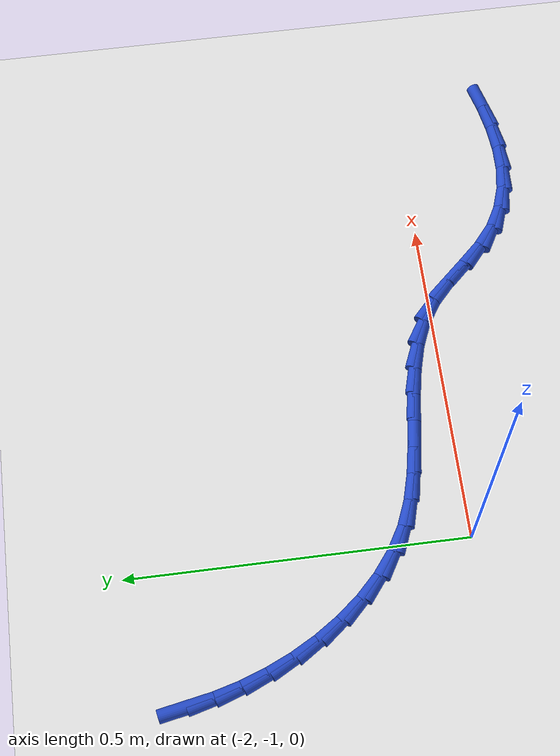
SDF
<sdf version="1.6">
 <world name="default">
  <model name="ground_plane">
   <static>1</static>
   <link name="link">
    <collision name="collision">
     <geometry><plane><normal>0 0 1</normal><size>100 100</size></plane></geometry>
     <surface><friction><ode><mu>100</mu><mu2>50</mu2></ode></friction></surface>
    </collision>
    <visual name="visual">
     <cast_shadows>0</cast_shadows>
     <geometry><plane><normal>0 0 1</normal><size>100 100</size></plane></geometry>
     <material>
      <script><uri>file://media/materials/scripts/gazebo.material</uri><name>Gazebo/WhiteGlow</name></script>
     </material>
    </visual>
   </link>
  </model>
  <model name="line">
   <link name="link_106">
    <pose>-2.1905795719265013 -0.5739764979690495 0.01 0 1.57 -1.3857414494534996</pose>
    <collision name="collision">
     <geometry><cylinder><radius>0.01</radius><length>0.08</length></cylinder></geometry>
    </collision>
    <visual name="visual">
     <material>
      <script><name>Gazebo/Blue</name><uri>file://media/materials/scripts/gazebo.material</uri></script>
     </material>
     <geometry><cylinder><radius>0.01</radius><length>0.08</length></cylinder></geometry>
    </visual>
   </link>
   <link name="link_107">
    <pose>-2.183313719088029 -0.6127905109364322 0.01 0 1.57 -1.310853567188774</pose>
    <collision name="collision">
     <geometry><cylinder><radius>0.01</radius><length>0.08</length></cylinder></geometry>
    </collision>
    <visual name="visual">
     <material>
      <script><name>Gazebo/Blue</name><uri>file://media/materials/scripts/gazebo.material</uri></script>
     </material>
     <geometry><cylinder><radius>0.01</radius><length>0.08</length></cylinder></geometry>
    </visual>
   </link>
   <link name="link_108">
    <pose>-2.17306337634153 -0.6513313932238003 0.01 0 1.57 -1.2326900348705445</pose>
    <collision name="collision">
     <geometry><cylinder><radius>0.01</radius><length>0.08</length></cylinder></geometry>
    </collision>
    <visual name="visual">
     <material>
      <script><name>Gazebo/Blue</name><uri>file://media/materials/scripts/gazebo.material</uri></script>
     </material>
     <geometry><cylinder><radius>0.01</radius><length>0.08</length></cylinder></geometry>
    </visual>
   </link>
   <link name="link_109">
    <pose>-2.1596142631256194 -0.6895817379187853 0.01 0 1.57 -1.1526055256046976</pose>
    <collision name="collision">
     <geometry><cylinder><radius>0.01</radius><length>0.08</length></cylinder></geometry>
    </collision>
    <visual name="visual">
     <material>
      <script><name>Gazebo/Blue</name><uri>file://media/materials/scripts/gazebo.material</uri></script>
     </material>
     <geometry><cylinder><radius>0.01</radius><length>0.08</length></cylinder></geometry>
    </visual>
   </link>
   <link name="link_110">
    <pose>-2.1428091992440605 -0.7273965478057418 0.01 0 1.57 -1.0702884219444921</pose>
    <collision name="collision">
     <geometry><cylinder><radius>0.01</radius><length>0.08</length></cylinder></geometry>
    </collision>
    <visual name="visual">
     <material>
      <script><name>Gazebo/Blue</name><uri>file://media/materials/scripts/gazebo.material</uri></script>
     </material>
     <geometry><cylinder><radius>0.01</radius><length>0.08</length></cylinder></geometry>
    </visual>
   </link>
   <link name="link_111">
    <pose>-2.122705001128251 -0.7641526519384344 0.01 0 1.57 -0.9830266138469054</pose>
    <collision name="collision">
     <geometry><cylinder><radius>0.01</radius><length>0.08</length></cylinder></geometry>
    </collision>
    <visual name="visual">
     <material>
      <script><name>Gazebo/Blue</name><uri>file://media/materials/scripts/gazebo.material</uri></script>
     </material>
     <geometry><cylinder><radius>0.01</radius><length>0.08</length></cylinder></geometry>
    </visual>
   </link>
   <link name="link_112">
    <pose>-2.0994086075881837 -0.7991148813217593 0.01 0 1.57 -0.8879286716854582</pose>
    <collision name="collision">
     <geometry><cylinder><radius>0.01</radius><length>0.08</length></cylinder></geometry>
    </collision>
    <visual name="visual">
     <material>
      <script><name>Gazebo/Blue</name><uri>file://media/materials/scripts/gazebo.material</uri></script>
     </material>
     <geometry><cylinder><radius>0.01</radius><length>0.08</length></cylinder></geometry>
    </visual>
   </link>
   <link name="link_113">
    <pose>-2.0730269574338496 -0.8315480669606126 0.01 0 1.57 -0.7821349165562128</pose>
    <collision name="collision">
     <geometry><cylinder><radius>0.01</radius><length>0.08</length></cylinder></geometry>
    </collision>
    <visual name="visual">
     <material>
      <script><name>Gazebo/Blue</name><uri>file://media/materials/scripts/gazebo.material</uri></script>
     </material>
     <geometry><cylinder><radius>0.01</radius><length>0.08</length></cylinder></geometry>
    </visual>
   </link>
   <link name="link_114">
    <pose>-2.043666989475241 -0.8607170398598907 0.01 0 1.57 -0.6629881623210974</pose>
    <collision name="collision">
     <geometry><cylinder><radius>0.01</radius><length>0.08</length></cylinder></geometry>
    </collision>
    <visual name="visual">
     <material>
      <script><name>Gazebo/Blue</name><uri>file://media/materials/scripts/gazebo.material</uri></script>
     </material>
     <geometry><cylinder><radius>0.01</radius><length>0.08</length></cylinder></geometry>
    </visual>
   </link>
   <link name="link_115">
    <pose>-2.0114356425223505 -0.8858866310244898 0.01 0 1.57 -0.5285184583404248</pose>
    <collision name="collision">
     <geometry><cylinder><radius>0.01</radius><length>0.08</length></cylinder></geometry>
    </collision>
    <visual name="visual">
     <material>
      <script><name>Gazebo/Blue</name><uri>file://media/materials/scripts/gazebo.material</uri></script>
     </material>
     <geometry><cylinder><radius>0.01</radius><length>0.08</length></cylinder></geometry>
    </visual>
   </link>
   <link name="link_116">
    <pose>-1.9764398553851712 -0.9063216714593054 0.01 0 1.57 -0.383863636900376</pose>
    <collision name="collision">
     <geometry><cylinder><radius>0.01</radius><length>0.08</length></cylinder></geometry>
    </collision>
    <visual name="visual">
     <material>
      <script><name>Gazebo/Blue</name><uri>file://media/materials/scripts/gazebo.material</uri></script>
     </material>
     <geometry><cylinder><radius>0.01</radius><length>0.08</length></cylinder></geometry>
    </visual>
   </link>
   <link name="link_117">
    <pose>-1.938848947820997 -0.921504626728167 0.01 0 1.57 -0.26665422859862065</pose>
    <collision name="collision">
     <geometry><cylinder><radius>0.01</radius><length>0.08</length></cylinder></geometry>
    </collision>
    <visual name="visual">
     <material>
      <script><name>Gazebo/Blue</name><uri>file://media/materials/scripts/gazebo.material</uri></script>
     </material>
     <geometry><cylinder><radius>0.01</radius><length>0.08</length></cylinder></geometry>
    </visual>
   </link>
   <link name="link_118">
    <pose>-1.8992356478408152 -0.9323253725283114 0.01 0 1.57 -0.19098928004651008</pose>
    <collision name="collision">
     <geometry><cylinder><radius>0.01</radius><length>0.08</length></cylinder></geometry>
    </collision>
    <visual name="visual">
     <material>
      <script><name>Gazebo/Blue</name><uri>file://media/materials/scripts/gazebo.material</uri></script>
     </material>
     <geometry><cylinder><radius>0.01</radius><length>0.08</length></cylinder></geometry>
    </visual>
   </link>
   <link name="link_119">
    <pose>-1.8583331725212169 -0.9402336985774733 0.01 0 1.57 -0.1542741179452086</pose>
    <collision name="collision">
     <geometry><cylinder><radius>0.01</radius><length>0.08</length></cylinder></geometry>
    </collision>
    <visual name="visual">
     <material>
      <script><name>Gazebo/Blue</name><uri>file://media/materials/scripts/gazebo.material</uri></script>
     </material>
     <geometry><cylinder><radius>0.01</radius><length>0.08</length></cylinder></geometry>
    </visual>
   </link>
   <link name="link_120">
    <pose>-1.8168751498302491 -0.9466808281109141 0.01 0 1.57 -0.15469321888042956</pose>
    <collision name="collision">
     <geometry><cylinder><radius>0.01</radius><length>0.08</length></cylinder></geometry>
    </collision>
    <visual name="visual">
     <material>
      <script><name>Gazebo/Blue</name><uri>file://media/materials/scripts/gazebo.material</uri></script>
     </material>
     <geometry><cylinder><radius>0.01</radius><length>0.08</length></cylinder></geometry>
    </visual>
   </link>
   <link name="link_121">
    <pose>-1.7755952077359631 -0.9531179843638953 0.01 0 1.57 -0.192740794334783</pose>
    <collision name="collision">
     <geometry><cylinder><radius>0.01</radius><length>0.08</length></cylinder></geometry>
    </collision>
    <visual name="visual">
     <material>
      <script><name>Gazebo/Blue</name><uri>file://media/materials/scripts/gazebo.material</uri></script>
     </material>
     <geometry><cylinder><radius>0.01</radius><length>0.08</length></cylinder></geometry>
    </visual>
   </link>
   <link name="link_122">
    <pose>-1.7352269742064061 -0.9609963905716782 0.01 0 1.57 -0.27129490708598075</pose>
    <collision name="collision">
     <geometry><cylinder><radius>0.01</radius><length>0.08</length></cylinder></geometry>
    </collision>
    <visual name="visual">
     <material>
      <script><name>Gazebo/Blue</name><uri>file://media/materials/scripts/gazebo.material</uri></script>
     </material>
     <geometry><cylinder><radius>0.01</radius><length>0.08</length></cylinder></geometry>
    </visual>
   </link>
   <link name="link_123">
    <pose>-1.6965040772096271 -0.9717672699695244 0.01 0 1.57 -0.3941173801980752</pose>
    <collision name="collision">
     <geometry><cylinder><radius>0.01</radius><length>0.08</length></cylinder></geometry>
    </collision>
    <visual name="visual">
     <material>
      <script><name>Gazebo/Blue</name><uri>file://media/materials/scripts/gazebo.material</uri></script>
     </material>
     <geometry><cylinder><radius>0.01</radius><length>0.08</length></cylinder></geometry>
    </visual>
   </link>
   <link name="link_124">
    <pose>-1.6601601447136745 -0.9868818457926956 0.01 0 1.57 -0.5616208743111429</pose>
    <collision name="collision">
     <geometry><cylinder><radius>0.01</radius><length>0.08</length></cylinder></geometry>
    </collision>
    <visual name="visual">
     <material>
      <script><name>Gazebo/Blue</name><uri>file://media/materials/scripts/gazebo.material</uri></script>
     </material>
     <geometry><cylinder><radius>0.01</radius><length>0.08</length></cylinder></geometry>
    </visual>
   </link>
   <link name="link_125">
    <pose>-1.6269288009775063 -1.007791333549619 0.01 0 1.57 -0.7388539475330934</pose>
    <collision name="collision">
     <geometry><cylinder><radius>0.01</radius><length>0.08</length></cylinder></geometry>
    </collision>
    <visual name="visual">
     <material>
      <script><name>Gazebo/Blue</name><uri>file://media/materials/scripts/gazebo.material</uri></script>
     </material>
     <geometry><cylinder><radius>0.01</radius><length>0.08</length></cylinder></geometry>
    </visual>
   </link>
   <link name="link_126">
    <pose>-1.5970807595069485 -1.034982606089437 0.01 0 1.57 -0.8264949304649177</pose>
    <collision name="collision">
     <geometry><cylinder><radius>0.01</radius><length>0.08</length></cylinder></geometry>
    </collision>
    <visual name="visual">
     <material>
      <script><name>Gazebo/Blue</name><uri>file://media/materials/scripts/gazebo.material</uri></script>
     </material>
     <geometry><cylinder><radius>0.01</radius><length>0.08</length></cylinder></geometry>
    </visual>
   </link>
   <link name="link_127">
    <pose>-1.5691450597184926 -1.0653142545427092 0.01 0 1.57 -0.8128147597120488</pose>
    <collision name="collision">
     <geometry><cylinder><radius>0.01</radius><length>0.08</length></cylinder></geometry>
    </collision>
    <visual name="visual">
     <material>
      <script><name>Gazebo/Blue</name><uri>file://media/materials/scripts/gazebo.material</uri></script>
     </material>
     <geometry><cylinder><radius>0.01</radius><length>0.08</length></cylinder></geometry>
    </visual>
   </link>
   <link name="link_128">
    <pose>-1.5412412002814215 -1.0947917085816001 0.01 0 1.57 -0.6935114997675901</pose>
    <collision name="collision">
     <geometry><cylinder><radius>0.01</radius><length>0.08</length></cylinder></geometry>
    </collision>
    <visual name="visual">
     <material>
      <script><name>Gazebo/Blue</name><uri>file://media/materials/scripts/gazebo.material</uri></script>
     </material>
     <geometry><cylinder><radius>0.01</radius><length>0.08</length></cylinder></geometry>
    </visual>
   </link>
   <link name="link_129">
    <pose>-1.51152419525033 -1.119494169624446 0.01 0 1.57 -0.5089508967885015</pose>
    <collision name="collision">
     <geometry><cylinder><radius>0.01</radius><length>0.08</length></cylinder></geometry>
    </collision>
    <visual name="visual">
     <material>
      <script><name>Gazebo/Blue</name><uri>file://media/materials/scripts/gazebo.material</uri></script>
     </material>
     <geometry><cylinder><radius>0.01</radius><length>0.08</length></cylinder></geometry>
    </visual>
   </link>
   <link name="link_130">
    <pose>-1.4791418114867851 -1.137562962516948 0.01 0 1.57 -0.328592848446487</pose>
    <collision name="collision">
     <geometry><cylinder><radius>0.01</radius><length>0.08</length></cylinder></geometry>
    </collision>
    <visual name="visual">
     <material>
      <script><name>Gazebo/Blue</name><uri>file://media/materials/scripts/gazebo.material</uri></script>
     </material>
     <geometry><cylinder><radius>0.01</radius><length>0.08</length></cylinder></geometry>
    </visual>
   </link>
   <link name="link_131">
    <pose>-1.4443434004355429 -1.1494275984088613 0.01 0 1.57 -0.16667306456227754</pose>
    <collision name="collision">
     <geometry><cylinder><radius>0.01</radius><length>0.08</length></cylinder></geometry>
    </collision>
    <visual name="visual">
     <material>
      <script><name>Gazebo/Blue</name><uri>file://media/materials/scripts/gazebo.material</uri></script>
     </material>
     <geometry><cylinder><radius>0.01</radius><length>0.08</length></cylinder></geometry>
    </visual>
   </link>
   <link name="link_132">
    <pose>-1.4074356691424432 -1.1556367261928435 0.01 0 1.57 -0.028467088495871182</pose>
    <collision name="collision">
     <geometry><cylinder><radius>0.01</radius><length>0.08</length></cylinder></geometry>
    </collision>
    <visual name="visual">
     <material>
      <script><name>Gazebo/Blue</name><uri>file://media/materials/scripts/gazebo.material</uri></script>
     </material>
     <geometry><cylinder><radius>0.01</radius><length>0.08</length></cylinder></geometry>
    </visual>
   </link>
   <link name="link_133">
    <pose>-1.3687253246533249 -1.156738994761552 0.01 0 1.57 0.08574458026779165</pose>
    <collision name="collision">
     <geometry><cylinder><radius>0.01</radius><length>0.08</length></cylinder></geometry>
    </collision>
    <visual name="visual">
     <material>
      <script><name>Gazebo/Blue</name><uri>file://media/materials/scripts/gazebo.material</uri></script>
     </material>
     <geometry><cylinder><radius>0.01</radius><length>0.08</length></cylinder></geometry>
    </visual>
   </link>
   <link name="link_134">
    <pose>-1.3285190740140262 -1.1532830530076446 0.01 0 1.57 0.17842804548551633</pose>
    <collision name="collision">
     <geometry><cylinder><radius>0.01</radius><length>0.08</length></cylinder></geometry>
    </collision>
    <visual name="visual">
     <material>
      <script><name>Gazebo/Blue</name><uri>file://media/materials/scripts/gazebo.material</uri></script>
     </material>
     <geometry><cylinder><radius>0.01</radius><length>0.08</length></cylinder></geometry>
    </visual>
   </link>
   <link name="link_135">
    <pose>-1.2871236242703863 -1.145817549823779 0.01 0 1.57 0.2529085985010577</pose>
    <collision name="collision">
     <geometry><cylinder><radius>0.01</radius><length>0.08</length></cylinder></geometry>
    </collision>
    <visual name="visual">
     <material>
      <script><name>Gazebo/Blue</name><uri>file://media/materials/scripts/gazebo.material</uri></script>
     </material>
     <geometry><cylinder><radius>0.01</radius><length>0.08</length></cylinder></geometry>
    </visual>
   </link>
  </model>
 </world>
</sdf>
